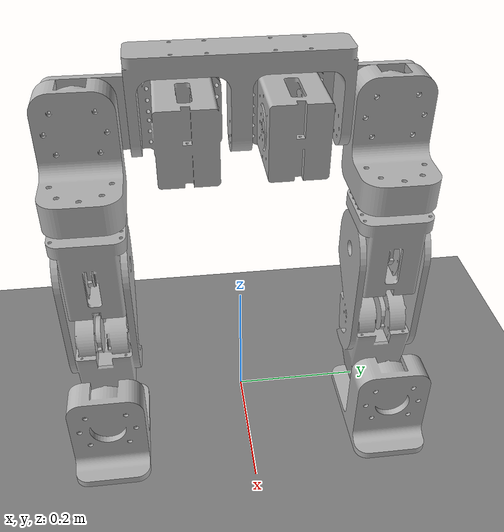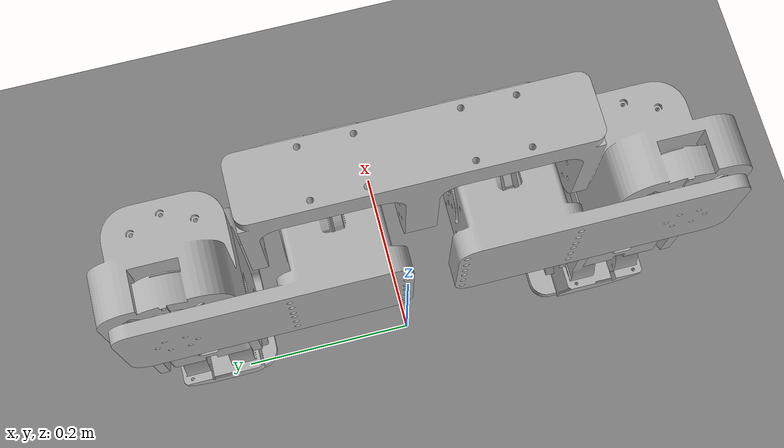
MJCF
<mujoco model="nemo scene">
  <include file="nemo3.xml"/>

  <statistic center="1 -0.8 1.1" extent=".3"/>

  <visual>
    <headlight diffuse="0.6 0.6 0.6" ambient="0.1 0.1 0.1" specular="0.9 0.9 0.9"/>
    <rgba haze="0.15 0.25 0.35 1"/>
    <global azimuth="140" elevation="-20"/>
  </visual>

  <asset>
    <texture type="skybox" builtin="gradient" rgb1="0.3 0.5 0.7" rgb2="0 0 0" width="512" height="3072"/>
    <texture type="2d" name="groundplane" builtin="checker" mark="edge" rgb1="0.2 0.3 0.4" rgb2="0.1 0.2 0.3"
      markrgb="0.8 0.8 0.8" width="300" height="300"/>
    <material name="groundplane" texture="groundplane" texuniform="true" texrepeat="5 5" reflectance="0.2"/>
  </asset>

  <worldbody>
    <geom conaffinity="1" contype="1" condim="3" friction="1 .1 .1" name="floor" pos="0 0 0" size="40 40 0.125" type="plane" rgba="0.5 0.5 0.5 1.0"/>
  </worldbody>
</mujoco>

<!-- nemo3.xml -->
<mujoco model="nemo3">
<compiler angle="radian" meshdir="assets" autolimits="true" />

  <option timestep="0.0035" iterations="8" ls_iterations="4">
    <flag eulerdamp="disable" />
  </option>

  <custom>
        <numeric data="2500" name="constraint_limit_stiffness" />
        <numeric data="27000" name="constraint_stiffness" />
        <numeric data="30" name="constraint_ang_damping" />
        <numeric data="80" name="constraint_vel_damping" />
        <numeric data="-0.05" name="ang_damping" />
        <numeric data="0.5" name="joint_scale_pos" />
        <numeric data="0.1" name="joint_scale_ang" />
        <numeric data="0" name="spring_mass_scale" />
        <numeric data="1" name="spring_inertia_scale" />
        <numeric data="20" name="matrix_inv_iterations" />
        <numeric data="15" name="solver_maxls" />
  </custom>

  <visual>
    <global ellipsoidinertia="true" />
  </visual>
  <default>
    <geom contype="0" conaffinity="0" condim="3" solref="0.005 1" />
    <equality solref="0.005 1" />
    <default class="robot">
      <site rgba="1 0 0 1" size="0.01" group="5" />
      <joint damping="0.5" armature="0.01" frictionloss="0.1" />
      <default class="visual">
        <geom group="2" type="mesh" contype="0" conaffinity="0" density="0" material="metallic" />
      </default>
      <default class="collision">
        <geom contype="1" group="3" rgba="0.5 0.5 0.5 1" material="metallic" />
      </default>
    </default>
  </default>

  <asset>
    <material name="metallic" rgba="0.7 0.7 0.7 1" />
    <material name="black" rgba="0.2 0.2 0.2 1" />
    <material name="transparent" rgba="0 0 0 0" />

    <mesh file="pelvis.stl" />
    <mesh name="l_hip_pitch" file="l_hip_pitch.stl" />
    <mesh name="l_hip_roll" file="l_hip_roll.stl" />
    <mesh name="l_hip_yaw" file="l_hip_yaw.stl" />
    <mesh name="l_knee" file="l_knee.stl" />
    <mesh name="l_foot_pitch" file="l_foot_pitch.stl" />
    <mesh name="l_foot_roll" file="l_foot_roll.stl" />

    <mesh name="r_hip_pitch" file="l_hip_pitch.stl" scale="1 -1 1" />
    <mesh name="r_hip_roll" file="l_hip_roll.stl" scale="1 -1 1" />
    <mesh name="r_hip_yaw" file="l_hip_yaw.stl" scale="1 -1 1" />
    <mesh name="r_knee" file="l_knee.stl" scale="1 -1 1" />
    <mesh name="r_foot_pitch" file="l_foot_pitch.stl" scale="1 -1 1" />
    <mesh name="r_foot_roll" file="l_foot_roll.stl" scale="1 -1 1" />

  </asset>
<worldbody>
  <light name="spotlight" mode="targetbodycom" target="pelvis" pos="0 -6 4" cutoff="30" />
  <body name="pelvis" pos="0.0 0.0 0.6075" childclass="robot">
    <inertial pos="0.0 0.0 -0.028416610000000002" mass="6.17236279" fullinertia="0.0004984205938138033 0.0004984205938138033 0.0004984205938138033 0.0 0.0 0.0" />
    <freejoint name="floating_base" />
    <geom type="mesh" class="visual" mesh="pelvis" />
    <body name="l_hip_pitch" pos="0.0 0.074 -0.114">
      <inertial pos="-0.02654803 -0.01950795 -1.923e-05" mass="1.55611213" fullinertia="0.00016889393403226585 0.00016889393403226585 0.00016889393403226585 -0.0 0.0 -0.0" />
      <joint name="l_hip_pitch" axis="0 1 0" range="-3 3" />
      <geom type="mesh" class="visual" mesh="l_hip_pitch" />
      <body name="l_hip_roll" pos="-0.0655 0.1475 0.0">
        <inertial pos="0.05411370000000001 -1.11e-05 -0.04747620000000001" mass="1.59270966" fullinertia="0.0008253870948403642 0.0008253870948403642 0.0008253870948403642 -0.0 0.0 -0.0" />
        <joint name="l_hip_roll" axis="1 0 0" range="-0.279253 1.0472" />
        <geom type="mesh" class="visual" mesh="l_hip_roll" />
        <body name="l_hip_yaw" pos="0.0841 0.0 -0.1158">
          <inertial pos="-2.282e-05 -0.0 -0.06721509" mass="1.31136084" fullinertia="0.0005924556282881553 0.0005924556282881553 0.0005924556282881553 -0.0 0.0 -0.0" />
          <joint name="l_hip_yaw" axis="0 0 1" range="-2.5 2.5" />
          <geom type="mesh" class="visual" mesh="l_hip_yaw" />
          <body name="l_knee" pos="0.0 0.0 -0.0855">
            <inertial pos="0.0 -0.0 -0.103" mass="0.280410225" fullinertia="0.0002974872077025 0.0002974872077025 0.0002974872077025 -0.0 0.0 -0.0" />
            <joint name="l_knee" axis="0 1 0" range="-0.3 2" />
            <geom type="mesh" class="visual" mesh="l_knee" />
            <body name="l_foot_pitch" pos="0.0 0.0 -0.206">
              <inertial pos="0.01828491 -0.0 -2.282e-05" mass="1.31136084" fullinertia="4.384383564856233e-05 4.384383564856233e-05 4.384383564856233e-05 -0.0 0.0 -0.0" />
              <joint name="l_foot_pitch" axis="0 1 0" range="-0.5 0.5" />
              <geom type="mesh" class="visual" mesh="l_foot_pitch" />
              <body name="l_foot_roll" pos="0.0855 0.0 0.0">
                <inertial pos="0.01657002 -0.0 -0.03378122" mass="1.196944145" fullinertia="0.0001694557379868171 0.0001694557379868171 0.0001694557379868171 -0.0 0.0 -0.0" />
                <joint name="l_foot_roll" axis="1 0 0" range="-1 1" />
                <geom type="mesh" class="visual" mesh="l_foot_roll" />
                <geom class="collision" name="left_foot" pos="-0.0117 0 -0.07625" size="0.05 0.0575 0.01" type="box" />
                <site name="left_foot_p1" pos="0.05 0.0 -0.0762" />
                <site name="left_foot_p2" pos="-0.05 0.0 -0.0762" />
                <site name="left_foot_p3" pos="0.0 0.05 -0.0762" />
              </body>
            </body>
          </body>
        </body>
      </body>
    </body>

    <body name="r_hip_pitch" pos="0.0 -0.074 -0.114">
      <inertial pos="-0.02654803 -0.01950795 -1.923e-05" mass="1.55611213" fullinertia="0.00016889393403226585 0.00016889393403226585 0.00016889393403226585 -0.0 0.0 -0.0" />
      <joint name="r_hip_pitch" axis="0 1 0" range="-3 3" />
      <geom type="mesh" class="visual" mesh="r_hip_pitch" />
      <body name="r_hip_roll" pos="-0.0655 -0.1475 0.0">
        <inertial pos="0.05411370000000001 -1.11e-05 -0.04747620000000001" mass="1.59270966" fullinertia="0.0008253870948403642 0.0008253870948403642 0.0008253870948403642 -0.0 0.0 -0.0" />
        <joint name="r_hip_roll" axis="1 0 0" range="-1.0472 0.279253" />
        <geom type="mesh" class="visual" mesh="r_hip_roll" />
        <body name="r_hip_yaw" pos="0.0841 -0.0 -0.1158">
          <inertial pos="-2.282e-05 -0.0 -0.06721509" mass="1.31136084" fullinertia="0.0005924556282881553 0.0005924556282881553 0.0005924556282881553 -0.0 0.0 -0.0" />
          <joint name="r_hip_yaw" axis="0 0 1" range="-2.5 2.5" />
          <geom type="mesh" class="visual" mesh="r_hip_yaw" />
          <body name="r_knee" pos="0.0 -0.0 -0.0855">
            <inertial pos="0.0 -0.0 -0.103" mass="0.280410225" fullinertia="0.0002974872077025 0.0002974872077025 0.0002974872077025 -0.0 0.0 -0.0" />
            <joint name="r_knee" axis="0 1 0" range="-0.3 2" />
            <geom type="mesh" class="visual" mesh="l_knee" />
            <body name="r_foot_pitch" pos="0.0 -0.0 -0.206">
              <inertial pos="0.01828491 -0.0 -2.282e-05" mass="1.31136084" fullinertia="4.384383564856233e-05 4.384383564856233e-05 4.384383564856233e-05 -0.0 0.0 -0.0" />
              <joint name="r_foot_pitch" axis="0 1 0" range="-0.5 0.5" />
              <geom type="mesh" class="visual" mesh="l_foot_pitch" />
              <body name="r_foot_roll" pos="0.0855 -0.0 0.0">
                <inertial pos="0.01657002 -0.0 -0.03378122" mass="1.196944145" fullinertia="0.0001694557379868171 0.0001694557379868171 0.0001694557379868171 -0.0 0.0 -0.0" />
                <joint name="r_foot_roll" axis="1 0 0" range="-1 1" />
                <geom type="mesh" class="visual" mesh="l_foot_roll" />
                <geom class="collision" name="right_foot" pos="-0.0117 0 -0.07625" size="0.05 0.0575 0.01" type="box" />
                <site name="right_foot_p1" pos="0.05 0.0 -0.0762" />
                <site name="right_foot_p2" pos="-0.05 0.0 -0.0762" />
                <site name="right_foot_p3" pos="0.0 -0.05 -0.0762" />
              </body>
            </body>
          </body>
        </body>
      </body>
    </body>
    <site name="pelvis_back" pos="-0.05 0.0 0.0" />
    <site name="pelvis_front" pos="0.05 0.0 0.0" />
    <site name="head" pos="0.0 0.0 0.5" />
    <light name="tracking" mode="trackcom" pos="0 0 2" />
  </body>
</worldbody>
<actuator>
  <position kp="20.0" class="robot" name="l_hip_pitch" joint="l_hip_pitch" forcerange="-23 23" inheritrange="1"/>
  <position kp="10.0" class="robot" name="l_hip_roll" joint="l_hip_roll" forcerange="-12 12" inheritrange="1"/>
  <position kp="10.0" class="robot" name="l_hip_yaw" joint="l_hip_yaw" forcerange="-12 12" inheritrange="1"/>
  <position kp="20.0" class="robot" name="l_knee" joint="l_knee" forcerange="-23 23" inheritrange="1"/>
  <position kp="20.0" class="robot" name="l_foot_pitch" joint="l_foot_pitch" forcerange="-23 23" inheritrange="1"/>
  <position kp="10.0" class="robot" name="l_foot_roll" joint="l_foot_roll" forcerange="-12 12" inheritrange="1"/>

  <position kp="20.0" class="robot" name="r_hip_pitch" joint="r_hip_pitch" forcerange="-23 23" inheritrange="1"/>
  <position kp="10.0" class="robot" name="r_hip_roll" joint="r_hip_roll" forcerange="-12 12" inheritrange="1"/>
  <position kp="10.0" class="robot" name="r_hip_yaw" joint="r_hip_yaw" forcerange="-23 23" inheritrange="1"/>
  <position kp="20.0" class="robot" name="r_knee" joint="r_knee" forcerange="-23 23" inheritrange="1"/>
  <position kp="20.0" class="robot" name="r_foot_pitch" joint="r_foot_pitch" forcerange="-23 23" inheritrange="1"/>
  <position kp="10.0" class="robot" name="r_foot_roll" joint="r_foot_roll" forcerange="-12 12" inheritrange="1"/>

  <velocity kv="2.0" class="robot" name="l_hip_pitch_v" joint="l_hip_pitch" forcerange="-23 23" ctrlrange="-20 20"/>
  <velocity kv="1.0" class="robot" name="l_hip_roll_v" joint="l_hip_roll" forcerange="-11 11" ctrlrange="-20 20"/>
  <velocity kv="1.0" class="robot" name="l_hip_yaw_v" joint="l_hip_yaw" forcerange="-11 11" ctrlrange="-20 20"/>
  <velocity kv="2.0" class="robot" name="l_knee_v" joint="l_knee" forcerange="-23 23" ctrlrange="-20 20"/>
  <velocity kv="2.0" class="robot" name="l_foot_pitch_v" joint="l_foot_pitch" forcerange="-23 23" ctrlrange="-20 20"/>
  <velocity kv="1.0" class="robot" name="l_foot_roll_v" joint="l_foot_roll" forcerange="-11 11" ctrlrange="-20 20"/>

  <velocity kv="2.0" class="robot" name="r_hip_pitch_v" joint="r_hip_pitch" forcerange="-23 23" ctrlrange="-20 20"/>
  <velocity kv="1.0" class="robot" name="r_hip_roll_v" joint="r_hip_roll" forcerange="-11 11" ctrlrange="-20 20"/>
  <velocity kv="1.0" class="robot" name="r_hip_yaw_v" joint="r_hip_yaw" forcerange="-11 11" ctrlrange="-20 20"/>
  <velocity kv="2.0" class="robot" name="r_knee_v" joint="r_knee" forcerange="-23 23" ctrlrange="-20 20"/>
  <velocity kv="2.0" class="robot" name="r_foot_pitch_v" joint="r_foot_pitch" forcerange="-23 23" ctrlrange="-20 20"/>
  <velocity kv="1.0" class="robot" name="r_foot_roll_v" joint="r_foot_roll" forcerange="-11 11" ctrlrange="-20 20"/>
</actuator>

<keyframe>
    <key name="stand" qpos="       0 0 0.6075       1 0 0 0       0 0 0 0 0 0       0 0 0 0 0 0       " />
</keyframe>

</mujoco>
